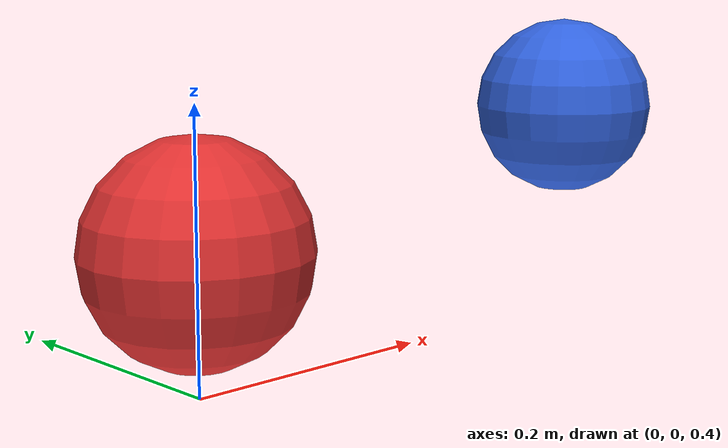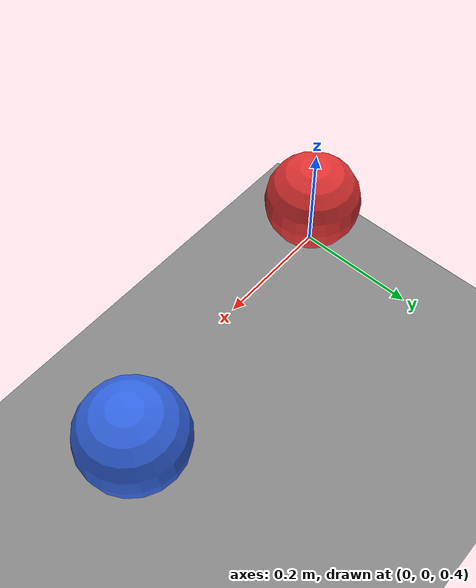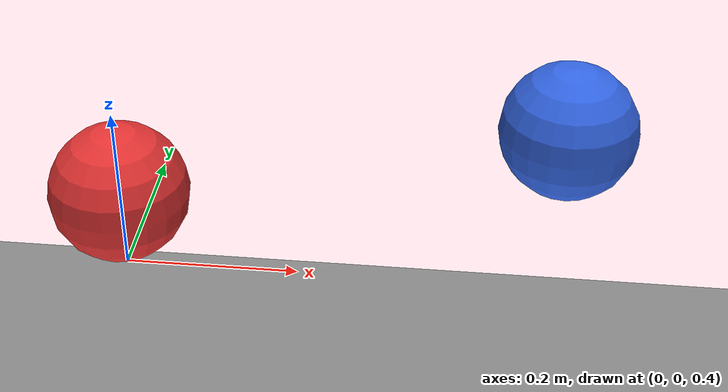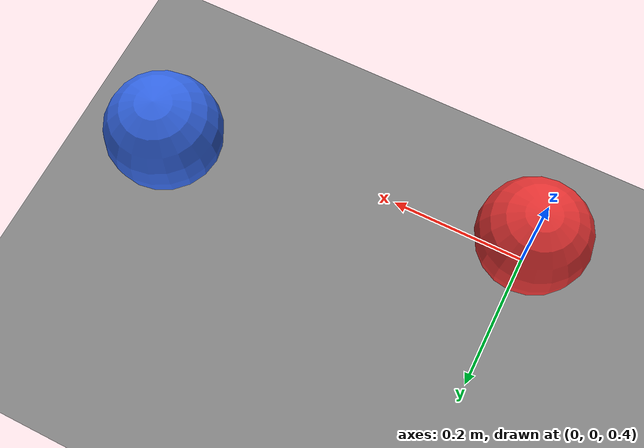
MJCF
<mujoco model="colliding_spheres">
   <option gravity="0 0 -9.81"
            timestep="{timestep}"
            integrator="Euler"
            solver="Newton"
            iterations="100"
            noslip_iterations="10"
            tolerance="1e-8"/>

    <visual>
        <quality shadowsize="2048"/>
        <map znear="0.01"/>
    </visual>

    <asset>
        <!-- Floor material -->
        <texture name="grid" type="2d" builtin="checker" width="512" height="512"
                 rgb1="0.2 0.2 0.2" rgb2="0.85 0.85 0.85"/>
        <material name="floor_mat" texture="grid" texrepeat="12 12" reflectance="0.15"/>

        <!-- Sphere materials -->
        <material name="sphere_a_mat" rgba="0.9 0.2 0.2 1" specular="0.6" shininess="0.8"/>
        <material name="sphere_b_mat" rgba="0.2 0.4 0.9 1" specular="0.6" shininess="0.8"/>
    </asset>

    <worldbody>
        <camera name="angled_view"
                pos="{camera_pos_x} {camera_pos_y} {camera_pos_z}"
                xyaxes="0.7 0.7 0  -0.3 0.3 0.9"/>

        <light name="sun" pos="0 0 5" dir="0 0 -1"
               diffuse="1.5 1.5 1.5"
               specular="0.6 0.6 0.6"/>
        <light name="fill" pos="2 2 3"
               diffuse="0.6 0.6 0.6"/>

        <!-- Floor -->
         <!-- Softer floor contact -->
        <geom name="floor"
              type="plane"
              size="5 5 0.1"
              material="floor_mat"
              solref="{solver_reference} 1"
              solimp="0.8 0.9 {solver_impedance}"/>

        <!-- Sphere A, linear and angular velocity of free joint stored in user: lx, ly, lz, ax, ay, az -->
        <body name="a" pos="0 0 0.5" user="1.0 0 0 0 0 0.5">
            <joint type="free" damping="0.01"/>
            <geom type="sphere" size="0.08" mass="1" material="sphere_a_mat" contype="1" conaffinity="1" solref="{solver_reference} 1" solimp="0.8 0.9 {solver_impedance}"/>
        </body>

        <!-- Sphere B, linear and angular velocity of free joint stored in user: lx, ly, lz, ax, ay, az -->
        <body name="b" pos="0.5 0.1 0.55" user="-1.0 0 0 0 0 -0.5">
            <joint type="free" damping="0.01"/>
            <geom type="sphere" size="0.08" mass="1" material="sphere_b_mat" contype="1" conaffinity="1" solref="{solver_reference} 1" solimp="0.8 0.9 {solver_impedance}"/>
        </body>
    </worldbody>

</mujoco>
